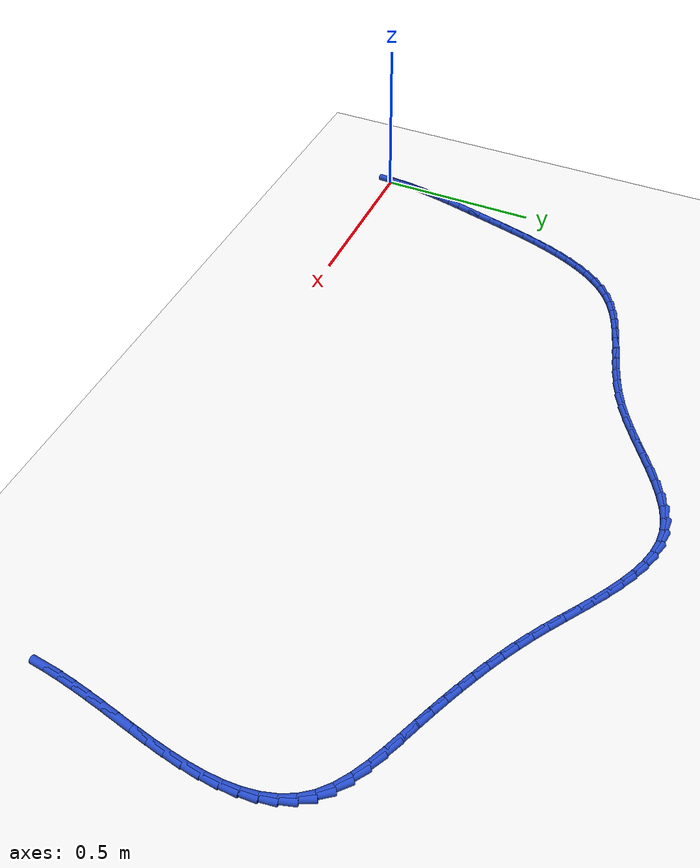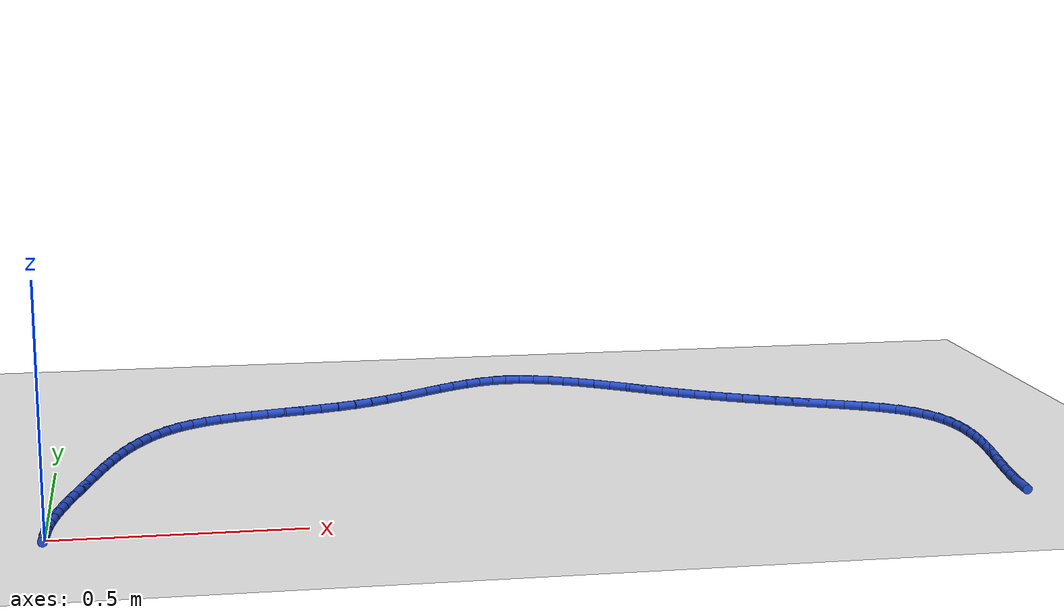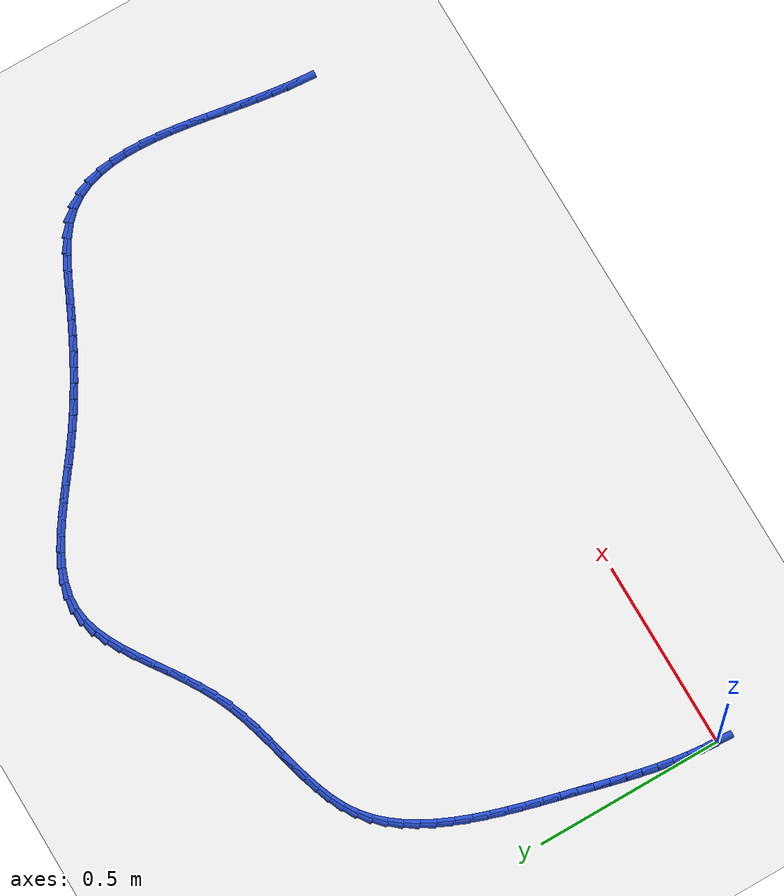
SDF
<sdf version="1.6">
 <world name="default">
  <model name="ground_plane">
   <static>1</static>
   <link name="link">
    <collision name="collision">
     <geometry><plane><normal>0 0 1</normal><size>100 100</size></plane></geometry>
     <surface><friction><ode><mu>100</mu><mu2>50</mu2></ode></friction></surface>
    </collision>
    <visual name="visual">
     <cast_shadows>0</cast_shadows>
     <geometry><plane><normal>0 0 1</normal><size>100 100</size></plane></geometry>
     <material>
      <script><uri>file://media/materials/scripts/gazebo.material</uri><name>Gazebo/WhiteGlow</name></script>
     </material>
    </visual>
   </link>
  </model>
  <model name="line">
   <link name="link_1">
    <pose>0.002293072764880472 0.04026289661467806 0.01 0 1.57 1.4680574297082787</pose>
    <collision name="collision">
     <geometry><cylinder><radius>0.01</radius><length>0.08</length></cylinder></geometry>
    </collision>
    <visual name="visual">
     <material>
      <script><name>Gazebo/Blue</name><uri>file://media/materials/scripts/gazebo.material</uri></script>
     </material>
     <geometry><cylinder><radius>0.01</radius><length>0.08</length></cylinder></geometry>
    </visual>
   </link>
   <link name="link_2">
    <pose>0.0064024168795074445 0.08012000642481716 0.01 0 1.57 1.4277513491622789</pose>
    <collision name="collision">
     <geometry><cylinder><radius>0.01</radius><length>0.08</length></cylinder></geometry>
    </collision>
    <visual name="visual">
     <material>
      <script><name>Gazebo/Blue</name><uri>file://media/materials/scripts/gazebo.material</uri></script>
     </material>
     <geometry><cylinder><radius>0.01</radius><length>0.08</length></cylinder></geometry>
    </visual>
   </link>
   <link name="link_3">
    <pose>0.01210741785367812 0.1197301782009352 0.01 0 1.57 1.393535114544863</pose>
    <collision name="collision">
     <geometry><cylinder><radius>0.01</radius><length>0.08</length></cylinder></geometry>
    </collision>
    <visual name="visual">
     <material>
      <script><name>Gazebo/Blue</name><uri>file://media/materials/scripts/gazebo.material</uri></script>
     </material>
     <geometry><cylinder><radius>0.01</radius><length>0.08</length></cylinder></geometry>
    </visual>
   </link>
   <link name="link_4">
    <pose>0.019187461197189743 0.15925226071355014 0.01 0 1.57 1.3657407606328948</pose>
    <collision name="collision">
     <geometry><cylinder><radius>0.01</radius><length>0.08</length></cylinder></geometry>
    </collision>
    <visual name="visual">
     <material>
      <script><name>Gazebo/Blue</name><uri>file://media/materials/scripts/gazebo.material</uri></script>
     </material>
     <geometry><cylinder><radius>0.01</radius><length>0.08</length></cylinder></geometry>
    </visual>
   </link>
   <link name="link_5">
    <pose>0.027421932419839513 0.19884510273317985 0.01 0 1.57 1.3445104145537299</pose>
    <collision name="collision">
     <geometry><cylinder><radius>0.01</radius><length>0.08</length></cylinder></geometry>
    </collision>
    <visual name="visual">
     <material>
      <script><name>Gazebo/Blue</name><uri>file://media/materials/scripts/gazebo.material</uri></script>
     </material>
     <geometry><cylinder><radius>0.01</radius><length>0.08</length></cylinder></geometry>
    </visual>
   </link>
   <link name="link_6">
    <pose>0.036590217031424656 0.2386675530303423 0.01 0 1.57 1.3298297836015076</pose>
    <collision name="collision">
     <geometry><cylinder><radius>0.01</radius><length>0.08</length></cylinder></geometry>
    </collision>
    <visual name="visual">
     <material>
      <script><name>Gazebo/Blue</name><uri>file://media/materials/scripts/gazebo.material</uri></script>
     </material>
     <geometry><cylinder><radius>0.01</radius><length>0.08</length></cylinder></geometry>
    </visual>
   </link>
   <link name="link_7">
    <pose>0.046471700541742406 0.2788784603755554 0.01 0 1.57 1.3215614664386257</pose>
    <collision name="collision">
     <geometry><cylinder><radius>0.01</radius><length>0.08</length></cylinder></geometry>
    </collision>
    <visual name="visual">
     <material>
      <script><name>Gazebo/Blue</name><uri>file://media/materials/scripts/gazebo.material</uri></script>
     </material>
     <geometry><cylinder><radius>0.01</radius><length>0.08</length></cylinder></geometry>
    </visual>
   </link>
   <link name="link_8">
    <pose>0.056845768460589974 0.3196366735393372 0.01 0 1.57 1.3194734919295483</pose>
    <collision name="collision">
     <geometry><cylinder><radius>0.01</radius><length>0.08</length></cylinder></geometry>
    </collision>
    <visual name="visual">
     <material>
      <script><name>Gazebo/Blue</name><uri>file://media/materials/scripts/gazebo.material</uri></script>
     </material>
     <geometry><cylinder><radius>0.01</radius><length>0.08</length></cylinder></geometry>
    </visual>
   </link>
   <link name="link_9">
    <pose>0.06749180629776459 0.36110104129220555 0.01 0 1.57 1.3211781342932702</pose>
    <collision name="collision">
     <geometry><cylinder><radius>0.01</radius><length>0.08</length></cylinder></geometry>
    </collision>
    <visual name="visual">
     <material>
      <script><name>Gazebo/Blue</name><uri>file://media/materials/scripts/gazebo.material</uri></script>
     </material>
     <geometry><cylinder><radius>0.01</radius><length>0.08</length></cylinder></geometry>
    </visual>
   </link>
   <link name="link_10">
    <pose>0.07826108646905851 0.40334423740519904 0.01 0 1.57 1.3181785002489284</pose>
    <collision name="collision">
     <geometry><cylinder><radius>0.01</radius><length>0.08</length></cylinder></geometry>
    </collision>
    <visual name="visual">
     <material>
      <script><name>Gazebo/Blue</name><uri>file://media/materials/scripts/gazebo.material</uri></script>
     </material>
     <geometry><cylinder><radius>0.01</radius><length>0.08</length></cylinder></geometry>
    </visual>
   </link>
   <link name="link_11">
    <pose>0.08929534082853424 0.44609074509093277 0.01 0 1.57 1.3084979038089992</pose>
    <collision name="collision">
     <geometry><cylinder><radius>0.01</radius><length>0.08</length></cylinder></geometry>
    </collision>
    <visual name="visual">
     <material>
      <script><name>Gazebo/Blue</name><uri>file://media/materials/scripts/gazebo.material</uri></script>
     </material>
     <geometry><cylinder><radius>0.01</radius><length>0.08</length></cylinder></geometry>
    </visual>
   </link>
   <link name="link_12">
    <pose>0.10080965139975946 0.48897711846378944 0.01 0 1.57 1.2920615907499067</pose>
    <collision name="collision">
     <geometry><cylinder><radius>0.01</radius><length>0.08</length></cylinder></geometry>
    </collision>
    <visual name="visual">
     <material>
      <script><name>Gazebo/Blue</name><uri>file://media/materials/scripts/gazebo.material</uri></script>
     </material>
     <geometry><cylinder><radius>0.01</radius><length>0.08</length></cylinder></geometry>
    </visual>
   </link>
   <link name="link_13">
    <pose>0.11301910020905238 0.5316399116348535 0.01 0 1.57 1.268539671049987</pose>
    <collision name="collision">
     <geometry><cylinder><radius>0.01</radius><length>0.08</length></cylinder></geometry>
    </collision>
    <visual name="visual">
     <material>
      <script><name>Gazebo/Blue</name><uri>file://media/materials/scripts/gazebo.material</uri></script>
     </material>
     <geometry><cylinder><radius>0.01</radius><length>0.08</length></cylinder></geometry>
    </visual>
   </link>
   <link name="link_14">
    <pose>0.12613876928273138 0.57371567871521 0.01 0 1.57 1.2373502660613087</pose>
    <collision name="collision">
     <geometry><cylinder><radius>0.01</radius><length>0.08</length></cylinder></geometry>
    </collision>
    <visual name="visual">
     <material>
      <script><name>Gazebo/Blue</name><uri>file://media/materials/scripts/gazebo.material</uri></script>
     </material>
     <geometry><cylinder><radius>0.01</radius><length>0.08</length></cylinder></geometry>
    </visual>
   </link>
   <link name="link_15">
    <pose>0.14038374064711473 0.6148409738159435 0.01 0 1.57 1.197656335810332</pose>
    <collision name="collision">
     <geometry><cylinder><radius>0.01</radius><length>0.08</length></cylinder></geometry>
    </collision>
    <visual name="visual">
     <material>
      <script><name>Gazebo/Blue</name><uri>file://media/materials/scripts/gazebo.material</uri></script>
     </material>
     <geometry><cylinder><radius>0.01</radius><length>0.08</length></cylinder></geometry>
    </visual>
   </link>
   <link name="link_16">
    <pose>0.15596909632852082 0.6546523510481392 0.01 0 1.57 1.1483673766644</pose>
    <collision name="collision">
     <geometry><cylinder><radius>0.01</radius><length>0.08</length></cylinder></geometry>
    </collision>
    <visual name="visual">
     <material>
      <script><name>Gazebo/Blue</name><uri>file://media/materials/scripts/gazebo.material</uri></script>
     </material>
     <geometry><cylinder><radius>0.01</radius><length>0.08</length></cylinder></geometry>
    </visual>
   </link>
   <link name="link_17">
    <pose>0.17310991835326794 0.6927863645228813 0.01 0 1.57 1.088165497358519</pose>
    <collision name="collision">
     <geometry><cylinder><radius>0.01</radius><length>0.08</length></cylinder></geometry>
    </collision>
    <visual name="visual">
     <material>
      <script><name>Gazebo/Blue</name><uri>file://media/materials/scripts/gazebo.material</uri></script>
     </material>
     <geometry><cylinder><radius>0.01</radius><length>0.08</length></cylinder></geometry>
    </visual>
   </link>
   <link name="link_18">
    <pose>0.19202128874767438 0.728879568351255 0.01 0 1.57 1.0155893693187203</pose>
    <collision name="collision">
     <geometry><cylinder><radius>0.01</radius><length>0.08</length></cylinder></geometry>
    </collision>
    <visual name="visual">
     <material>
      <script><name>Gazebo/Blue</name><uri>file://media/materials/scripts/gazebo.material</uri></script>
     </material>
     <geometry><cylinder><radius>0.01</radius><length>0.08</length></cylinder></geometry>
    </visual>
   </link>
   <link name="link_19">
    <pose>0.21291828953805852 0.7625685166443454 0.01 0 1.57 0.9292274954956832</pose>
    <collision name="collision">
     <geometry><cylinder><radius>0.01</radius><length>0.08</length></cylinder></geometry>
    </collision>
    <visual name="visual">
     <material>
      <script><name>Gazebo/Blue</name><uri>file://media/materials/scripts/gazebo.material</uri></script>
     </material>
     <geometry><cylinder><radius>0.01</radius><length>0.08</length></cylinder></geometry>
    </visual>
   </link>
   <link name="link_20">
    <pose>0.2360160027507386 0.7934897635132365 0.01 0 1.57 0.8280821252420515</pose>
    <collision name="collision">
     <geometry><cylinder><radius>0.01</radius><length>0.08</length></cylinder></geometry>
    </collision>
    <visual name="visual">
     <material>
      <script><name>Gazebo/Blue</name><uri>file://media/materials/scripts/gazebo.material</uri></script>
     </material>
     <geometry><cylinder><radius>0.01</radius><length>0.08</length></cylinder></geometry>
    </visual>
   </link>
   <link name="link_21">
    <pose>0.2615295104120331 0.8212798630690138 0.01 0 1.57 0.7121335410974271</pose>
    <collision name="collision">
     <geometry><cylinder><radius>0.01</radius><length>0.08</length></cylinder></geometry>
    </collision>
    <visual name="visual">
     <material>
      <script><name>Gazebo/Blue</name><uri>file://media/materials/scripts/gazebo.material</uri></script>
     </material>
     <geometry><cylinder><radius>0.01</radius><length>0.08</length></cylinder></geometry>
    </visual>
   </link>
   <link name="link_22">
    <pose>0.28967389454826 0.8455753694227616 0.01 0 1.57 0.5850457423293777</pose>
    <collision name="collision">
     <geometry><cylinder><radius>0.01</radius><length>0.08</length></cylinder></geometry>
    </collision>
    <visual name="visual">
     <material>
      <script><name>Gazebo/Blue</name><uri>file://media/materials/scripts/gazebo.material</uri></script>
     </material>
     <geometry><cylinder><radius>0.01</radius><length>0.08</length></cylinder></geometry>
    </visual>
   </link>
   <link name="link_23">
    <pose>0.3206270795238589 0.8660788840515742 0.01 0 1.57 0.46988482494122213</pose>
    <collision name="collision">
     <geometry><cylinder><radius>0.01</radius><length>0.08</length></cylinder></geometry>
    </collision>
    <visual name="visual">
     <material>
      <script><name>Gazebo/Blue</name><uri>file://media/materials/scripts/gazebo.material</uri></script>
     </material>
     <geometry><cylinder><radius>0.01</radius><length>0.08</length></cylinder></geometry>
    </visual>
   </link>
   <link name="link_24">
    <pose>0.35420761839157633 0.8831317872834248 0.01 0 1.57 0.37982766613788504</pose>
    <collision name="collision">
     <geometry><cylinder><radius>0.01</radius><length>0.08</length></cylinder></geometry>
    </collision>
    <visual name="visual">
     <material>
      <script><name>Gazebo/Blue</name><uri>file://media/materials/scripts/gazebo.material</uri></script>
     </material>
     <geometry><cylinder><radius>0.01</radius><length>0.08</length></cylinder></geometry>
    </visual>
   </link>
   <link name="link_25">
    <pose>0.39003258971823157 0.8974335782955515 0.01 0 1.57 0.3143938097577289</pose>
    <collision name="collision">
     <geometry><cylinder><radius>0.01</radius><length>0.08</length></cylinder></geometry>
    </collision>
    <visual name="visual">
     <material>
      <script><name>Gazebo/Blue</name><uri>file://media/materials/scripts/gazebo.material</uri></script>
     </material>
     <geometry><cylinder><radius>0.01</radius><length>0.08</length></cylinder></geometry>
    </visual>
   </link>
   <link name="link_26">
    <pose>0.4277168484675547 0.909687708697065 0.01 0 1.57 0.2717192743123202</pose>
    <collision name="collision">
     <geometry><cylinder><radius>0.01</radius><length>0.08</length></cylinder></geometry>
    </collision>
    <visual name="visual">
     <material>
      <script><name>Gazebo/Blue</name><uri>file://media/materials/scripts/gazebo.material</uri></script>
     </material>
     <geometry><cylinder><radius>0.01</radius><length>0.08</length></cylinder></geometry>
    </visual>
   </link>
   <link name="link_27">
    <pose>0.46687524960327537 0.9205976300970748 0.01 0 1.57 0.24982075747369306</pose>
    <collision name="collision">
     <geometry><cylinder><radius>0.01</radius><length>0.08</length></cylinder></geometry>
    </collision>
    <visual name="visual">
     <material>
      <script><name>Gazebo/Blue</name><uri>file://media/materials/scripts/gazebo.material</uri></script>
     </material>
     <geometry><cylinder><radius>0.01</radius><length>0.08</length></cylinder></geometry>
    </visual>
   </link>
   <link name="link_28">
    <pose>0.5071226480891243 0.9308667941046921 0.01 0 1.57 0.24713892666540466</pose>
    <collision name="collision">
     <geometry><cylinder><radius>0.01</radius><length>0.08</length></cylinder></geometry>
    </collision>
    <visual name="visual">
     <material>
      <script><name>Gazebo/Blue</name><uri>file://media/materials/scripts/gazebo.material</uri></script>
     </material>
     <geometry><cylinder><radius>0.01</radius><length>0.08</length></cylinder></geometry>
    </visual>
   </link>
   <link name="link_29">
    <pose>0.5480738988888312 0.9411986523290262 0.01 0 1.57 0.2626978691096048</pose>
    <collision name="collision">
     <geometry><cylinder><radius>0.01</radius><length>0.08</length></cylinder></geometry>
    </collision>
    <visual name="visual">
     <material>
      <script><name>Gazebo/Blue</name><uri>file://media/materials/scripts/gazebo.material</uri></script>
     </material>
     <geometry><cylinder><radius>0.01</radius><length>0.08</length></cylinder></geometry>
    </visual>
   </link>
   <link name="link_30">
    <pose>0.5893438569661262 0.9522966563791879 0.01 0 1.57 0.2960493335537899</pose>
    <collision name="collision">
     <geometry><cylinder><radius>0.01</radius><length>0.08</length></cylinder></geometry>
    </collision>
    <visual name="visual">
     <material>
      <script><name>Gazebo/Blue</name><uri>file://media/materials/scripts/gazebo.material</uri></script>
     </material>
     <geometry><cylinder><radius>0.01</radius><length>0.08</length></cylinder></geometry>
    </visual>
   </link>
   <link name="link_31">
    <pose>0.6305473772847394 0.9648642578642875 0.01 0 1.57 0.34707436338887726</pose>
    <collision name="collision">
     <geometry><cylinder><radius>0.01</radius><length>0.08</length></cylinder></geometry>
    </collision>
    <visual name="visual">
     <material>
      <script><name>Gazebo/Blue</name><uri>file://media/materials/scripts/gazebo.material</uri></script>
     </material>
     <geometry><cylinder><radius>0.01</radius><length>0.08</length></cylinder></geometry>
    </visual>
   </link>
   <link name="link_32">
    <pose>0.6712993148084009 0.9796049083934346 0.01 0 1.57 0.41561308090729066</pose>
    <collision name="collision">
     <geometry><cylinder><radius>0.01</radius><length>0.08</length></cylinder></geometry>
    </collision>
    <visual name="visual">
     <material>
      <script><name>Gazebo/Blue</name><uri>file://media/materials/scripts/gazebo.material</uri></script>
     </material>
     <geometry><cylinder><radius>0.01</radius><length>0.08</length></cylinder></geometry>
    </visual>
   </link>
   <link name="link_33">
    <pose>0.711214998484006 0.9972205382831679 0.01 0 1.57 0.490434120031888</pose>
    <collision name="collision">
     <geometry><cylinder><radius>0.01</radius><length>0.08</length></cylinder></geometry>
    </collision>
    <visual name="visual">
     <material>
      <script><name>Gazebo/Blue</name><uri>file://media/materials/scripts/gazebo.material</uri></script>
     </material>
     <geometry><cylinder><radius>0.01</radius><length>0.08</length></cylinder></geometry>
    </visual>
   </link>
   <link name="link_34">
    <pose>0.7500517704067763 1.0179572735863964 0.01 0 1.57 0.5462048074378624</pose>
    <collision name="collision">
     <geometry><cylinder><radius>0.01</radius><length>0.08</length></cylinder></geometry>
    </collision>
    <visual name="visual">
     <material>
      <script><name>Gazebo/Blue</name><uri>file://media/materials/scripts/gazebo.material</uri></script>
     </material>
     <geometry><cylinder><radius>0.01</radius><length>0.08</length></cylinder></geometry>
    </visual>
   </link>
   <link name="link_35">
    <pose>0.7879071554901473 1.0409693923068581 0.01 0 1.57 0.5804995807917855</pose>
    <collision name="collision">
     <geometry><cylinder><radius>0.01</radius><length>0.08</length></cylinder></geometry>
    </collision>
    <visual name="visual">
     <material>
      <script><name>Gazebo/Blue</name><uri>file://media/materials/scripts/gazebo.material</uri></script>
     </material>
     <geometry><cylinder><radius>0.01</radius><length>0.08</length></cylinder></geometry>
    </visual>
   </link>
   <link name="link_36">
    <pose>0.8249285554393954 1.065251088296617 0.01 0 1.57 0.5941176223363843</pose>
    <collision name="collision">
     <geometry><cylinder><radius>0.01</radius><length>0.08</length></cylinder></geometry>
    </collision>
    <visual name="visual">
     <material>
      <script><name>Gazebo/Blue</name><uri>file://media/materials/scripts/gazebo.material</uri></script>
     </material>
     <geometry><cylinder><radius>0.01</radius><length>0.08</length></cylinder></geometry>
    </visual>
   </link>
   <link name="link_37">
    <pose>0.8612633719597962 1.0897965554077376 0.01 0 1.57 0.5868349872010306</pose>
    <collision name="collision">
     <geometry><cylinder><radius>0.01</radius><length>0.08</length></cylinder></geometry>
    </collision>
    <visual name="visual">
     <material>
      <script><name>Gazebo/Blue</name><uri>file://media/materials/scripts/gazebo.material</uri></script>
     </material>
     <geometry><cylinder><radius>0.01</radius><length>0.08</length></cylinder></geometry>
    </visual>
   </link>
   <link name="link_38">
    <pose>0.8970590067566245 1.113599987492282 0.01 0 1.57 0.5571392559632566</pose>
    <collision name="collision">
     <geometry><cylinder><radius>0.01</radius><length>0.08</length></cylinder></geometry>
    </collision>
    <visual name="visual">
     <material>
      <script><name>Gazebo/Blue</name><uri>file://media/materials/scripts/gazebo.material</uri></script>
     </material>
     <geometry><cylinder><radius>0.01</radius><length>0.08</length></cylinder></geometry>
    </visual>
   </link>
   <link name="link_39">
    <pose>0.9324628615351568 1.135655578402315 0.01 0 1.57 0.5020618229438581</pose>
    <collision name="collision">
     <geometry><cylinder><radius>0.01</radius><length>0.08</length></cylinder></geometry>
    </collision>
    <visual name="visual">
     <material>
      <script><name>Gazebo/Blue</name><uri>file://media/materials/scripts/gazebo.material</uri></script>
     </material>
     <geometry><cylinder><radius>0.01</radius><length>0.08</length></cylinder></geometry>
    </visual>
   </link>
   <link name="link_40">
    <pose>0.967622338000668 1.1549575219898995 0.01 0 1.57 0.4172511850922168</pose>
    <collision name="collision">
     <geometry><cylinder><radius>0.01</radius><length>0.08</length></cylinder></geometry>
    </collision>
    <visual name="visual">
     <material>
      <script><name>Gazebo/Blue</name><uri>file://media/materials/scripts/gazebo.material</uri></script>
     </material>
     <geometry><cylinder><radius>0.01</radius><length>0.08</length></cylinder></geometry>
    </visual>
   </link>
   <link name="link_41">
    <pose>1.0026848378584337 1.1705000121070996 0.01 0 1.57 0.29780293614020903</pose>
    <collision name="collision">
     <geometry><cylinder><radius>0.01</radius><length>0.08</length></cylinder></geometry>
    </collision>
    <visual name="visual">
     <material>
      <script><name>Gazebo/Blue</name><uri>file://media/materials/scripts/gazebo.material</uri></script>
     </material>
     <geometry><cylinder><radius>0.01</radius><length>0.08</length></cylinder></geometry>
    </visual>
   </link>
   <link name="link_42">
    <pose>1.03779776281373 1.1812772426059786 0.01 0 1.57 0.1408359196409366</pose>
    <collision name="collision">
     <geometry><cylinder><radius>0.01</radius><length>0.08</length></cylinder></geometry>
    </collision>
    <visual name="visual">
     <material>
      <script><name>Gazebo/Blue</name><uri>file://media/materials/scripts/gazebo.material</uri></script>
     </material>
     <geometry><cylinder><radius>0.01</radius><length>0.08</length></cylinder></geometry>
    </visual>
   </link>
   <link name="link_43">
    <pose>1.0731085145718318 1.1862834073386006 0.01 0 1.57 -0.04283869534635073</pose>
    <collision name="collision">
     <geometry><cylinder><radius>0.01</radius><length>0.08</length></cylinder></geometry>
    </collision>
    <visual name="visual">
     <material>
      <script><name>Gazebo/Blue</name><uri>file://media/materials/scripts/gazebo.material</uri></script>
     </material>
     <geometry><cylinder><radius>0.01</radius><length>0.08</length></cylinder></geometry>
    </visual>
   </link>
   <link name="link_44">
    <pose>1.1087351744574678 1.1847562734200272 0.01 0 1.57 -0.20867135849247911</pose>
    <collision name="collision">
     <geometry><cylinder><radius>0.01</radius><length>0.08</length></cylinder></geometry>
    </collision>
    <visual name="visual">
     <material>
      <script><name>Gazebo/Blue</name><uri>file://media/materials/scripts/gazebo.material</uri></script>
     </material>
     <geometry><cylinder><radius>0.01</radius><length>0.08</length></cylinder></geometry>
    </visual>
   </link>
   <link name="link_45">
    <pose>1.1446492389579903 1.1771513325132588 0.01 0 1.57 -0.3416705830866303</pose>
    <collision name="collision">
     <geometry><cylinder><radius>0.01</radius><length>0.08</length></cylinder></geometry>
    </collision>
    <visual name="visual">
     <material>
      <script><name>Gazebo/Blue</name><uri>file://media/materials/scripts/gazebo.material</uri></script>
     </material>
     <geometry><cylinder><radius>0.01</radius><length>0.08</length></cylinder></geometry>
    </visual>
   </link>
   <link name="link_46">
    <pose>1.1807764894034296 1.1643038459101005 0.01 0 1.57 -0.4440825799264657</pose>
    <collision name="collision">
     <geometry><cylinder><radius>0.01</radius><length>0.08</length></cylinder></geometry>
    </collision>
    <visual name="visual">
     <material>
      <script><name>Gazebo/Blue</name><uri>file://media/materials/scripts/gazebo.material</uri></script>
     </material>
     <geometry><cylinder><radius>0.01</radius><length>0.08</length></cylinder></geometry>
    </visual>
   </link>
   <link name="link_47">
    <pose>1.2170426920898276 1.1470491997942642 0.01 0 1.57 -0.5205122893193966</pose>
    <collision name="collision">
     <geometry><cylinder><radius>0.01</radius><length>0.08</length></cylinder></geometry>
    </collision>
    <visual name="visual">
     <material>
      <script><name>Gazebo/Blue</name><uri>file://media/materials/scripts/gazebo.material</uri></script>
     </material>
     <geometry><cylinder><radius>0.01</radius><length>0.08</length></cylinder></geometry>
    </visual>
   </link>
   <link name="link_48">
    <pose>1.2533736133132252 1.126222780349462 0.01 0 1.57 -0.5754823118493644</pose>
    <collision name="collision">
     <geometry><cylinder><radius>0.01</radius><length>0.08</length></cylinder></geometry>
    </collision>
    <visual name="visual">
     <material>
      <script><name>Gazebo/Blue</name><uri>file://media/materials/scripts/gazebo.material</uri></script>
     </material>
     <geometry><cylinder><radius>0.01</radius><length>0.08</length></cylinder></geometry>
    </visual>
   </link>
   <link name="link_49">
    <pose>1.2896950193696632 1.1026599737594047 0.01 0 1.57 -0.6125284658679858</pose>
    <collision name="collision">
     <geometry><cylinder><radius>0.01</radius><length>0.08</length></cylinder></geometry>
    </collision>
    <visual name="visual">
     <material>
      <script><name>Gazebo/Blue</name><uri>file://media/materials/scripts/gazebo.material</uri></script>
     </material>
     <geometry><cylinder><radius>0.01</radius><length>0.08</length></cylinder></geometry>
    </visual>
   </link>
   <link name="link_50">
    <pose>1.3259326765551833 1.0771961662078033 0.01 0 1.57 -0.6340272139407414</pose>
    <collision name="collision">
     <geometry><cylinder><radius>0.01</radius><length>0.08</length></cylinder></geometry>
    </collision>
    <visual name="visual">
     <material>
      <script><name>Gazebo/Blue</name><uri>file://media/materials/scripts/gazebo.material</uri></script>
     </material>
     <geometry><cylinder><radius>0.01</radius><length>0.08</length></cylinder></geometry>
    </visual>
   </link>
   <link name="link_51">
    <pose>1.362012351165826 1.0506667438783697 0.01 0 1.57 -0.6412488032385681</pose>
    <collision name="collision">
     <geometry><cylinder><radius>0.01</radius><length>0.08</length></cylinder></geometry>
    </collision>
    <visual name="visual">
     <material>
      <script><name>Gazebo/Blue</name><uri>file://media/materials/scripts/gazebo.material</uri></script>
     </material>
     <geometry><cylinder><radius>0.01</radius><length>0.08</length></cylinder></geometry>
    </visual>
   </link>
   <link name="link_52">
    <pose>1.3978598094976329 1.023907092954815 0.01 0 1.57 -0.6344134094242865</pose>
    <collision name="collision">
     <geometry><cylinder><radius>0.01</radius><length>0.08</length></cylinder></geometry>
    </collision>
    <visual name="visual">
     <material>
      <script><name>Gazebo/Blue</name><uri>file://media/materials/scripts/gazebo.material</uri></script>
     </material>
     <geometry><cylinder><radius>0.01</radius><length>0.08</length></cylinder></geometry>
    </visual>
   </link>
   <link name="link_53">
    <pose>1.4334008178466449 0.9977525996208514 0.01 0 1.57 -0.6134081438822657</pose>
    <collision name="collision">
     <geometry><cylinder><radius>0.01</radius><length>0.08</length></cylinder></geometry>
    </collision>
    <visual name="visual">
     <material>
      <script><name>Gazebo/Blue</name><uri>file://media/materials/scripts/gazebo.material</uri></script>
     </material>
     <geometry><cylinder><radius>0.01</radius><length>0.08</length></cylinder></geometry>
    </visual>
   </link>
   <link name="link_54">
    <pose>1.4685715213510977 0.9729922845638402 0.01 0 1.57 -0.5864075788525958</pose>
    <collision name="collision">
     <geometry><cylinder><radius>0.01</radius><length>0.08</length></cylinder></geometry>
    </collision>
    <visual name="visual">
     <material>
      <script><name>Gazebo/Blue</name><uri>file://media/materials/scripts/gazebo.material</uri></script>
     </material>
     <geometry><cylinder><radius>0.01</radius><length>0.08</length></cylinder></geometry>
    </visual>
   </link>
   <link name="link_55">
    <pose>1.503439709040889 0.9498270745138628 0.01 0 1.57 -0.5600649396568915</pose>
    <collision name="collision">
     <geometry><cylinder><radius>0.01</radius><length>0.08</length></cylinder></geometry>
    </collision>
    <visual name="visual">
     <material>
      <script><name>Gazebo/Blue</name><uri>file://media/materials/scripts/gazebo.material</uri></script>
     </material>
     <geometry><cylinder><radius>0.01</radius><length>0.08</length></cylinder></geometry>
    </visual>
   </link>
   <link name="link_56">
    <pose>1.5381636290099951 0.9280537875994134 0.01 0 1.57 -0.5350830426676773</pose>
    <collision name="collision">
     <geometry><cylinder><radius>0.01</radius><length>0.08</length></cylinder></geometry>
    </collision>
    <visual name="visual">
     <material>
      <script><name>Gazebo/Blue</name><uri>file://media/materials/scripts/gazebo.material</uri></script>
     </material>
     <geometry><cylinder><radius>0.01</radius><length>0.08</length></cylinder></geometry>
    </visual>
   </link>
   <link name="link_57">
    <pose>1.5729033059908895 0.9074613051556425 0.01 0 1.57 -0.5120162792564805</pose>
    <collision name="collision">
     <geometry><cylinder><radius>0.01</radius><length>0.08</length></cylinder></geometry>
    </collision>
    <visual name="visual">
     <material>
      <script><name>Gazebo/Blue</name><uri>file://media/materials/scripts/gazebo.material</uri></script>
     </material>
     <geometry><cylinder><radius>0.01</radius><length>0.08</length></cylinder></geometry>
    </visual>
   </link>
   <link name="link_58">
    <pose>1.607818764716044 0.8878385085177005 0.01 0 1.57 -0.49135992198598105</pose>
    <collision name="collision">
     <geometry><cylinder><radius>0.01</radius><length>0.08</length></cylinder></geometry>
    </collision>
    <visual name="visual">
     <material>
      <script><name>Gazebo/Blue</name><uri>file://media/materials/scripts/gazebo.material</uri></script>
     </material>
     <geometry><cylinder><radius>0.01</radius><length>0.08</length></cylinder></geometry>
    </visual>
   </link>
   <link name="link_59">
    <pose>1.64307002991793 0.8689742790207376 0.01 0 1.57 -0.47351763720241713</pose>
    <collision name="collision">
     <geometry><cylinder><radius>0.01</radius><length>0.08</length></cylinder></geometry>
    </collision>
    <visual name="visual">
     <material>
      <script><name>Gazebo/Blue</name><uri>file://media/materials/scripts/gazebo.material</uri></script>
     </material>
     <geometry><cylinder><radius>0.01</radius><length>0.08</length></cylinder></geometry>
    </visual>
   </link>
   <link name="link_60">
    <pose>1.6788171263290208 0.8506574979999052 0.01 0 1.57 -0.4587785244799996</pose>
    <collision name="collision">
     <geometry><cylinder><radius>0.01</radius><length>0.08</length></cylinder></geometry>
    </collision>
    <visual name="visual">
     <material>
      <script><name>Gazebo/Blue</name><uri>file://media/materials/scripts/gazebo.material</uri></script>
     </material>
     <geometry><cylinder><radius>0.01</radius><length>0.08</length></cylinder></geometry>
    </visual>
   </link>
   <link name="link_61">
    <pose>1.7152200786817886 0.8326770467903528 0.01 0 1.57 -0.44730595617629876</pose>
    <collision name="collision">
     <geometry><cylinder><radius>0.01</radius><length>0.08</length></cylinder></geometry>
    </collision>
    <visual name="visual">
     <material>
      <script><name>Gazebo/Blue</name><uri>file://media/materials/scripts/gazebo.material</uri></script>
     </material>
     <geometry><cylinder><radius>0.01</radius><length>0.08</length></cylinder></geometry>
    </visual>
   </link>
   <link name="link_62">
    <pose>1.7524389117087047 0.8148218067272315 0.01 0 1.57 -0.4397778877596279</pose>
    <collision name="collision">
     <geometry><cylinder><radius>0.01</radius><length>0.08</length></cylinder></geometry>
    </collision>
    <visual name="visual">
     <material>
      <script><name>Gazebo/Blue</name><uri>file://media/materials/scripts/gazebo.material</uri></script>
     </material>
     <geometry><cylinder><radius>0.01</radius><length>0.08</length></cylinder></geometry>
    </visual>
   </link>
   <link name="link_63">
    <pose>1.7905946869582159 0.7968691628397468 0.01 0 1.57 -0.4478152844609477</pose>
    <collision name="collision">
     <geometry><cylinder><radius>0.01</radius><length>0.08</length></cylinder></geometry>
    </collision>
    <visual name="visual">
     <material>
      <script><name>Gazebo/Blue</name><uri>file://media/materials/scripts/gazebo.material</uri></script>
     </material>
     <geometry><cylinder><radius>0.01</radius><length>0.08</length></cylinder></geometry>
    </visual>
   </link>
   <link name="link_64">
    <pose>1.8290808573796944 0.7783818151596678 0.01 0 1.57 -0.48193903582845404</pose>
    <collision name="collision">
     <geometry><cylinder><radius>0.01</radius><length>0.08</length></cylinder></geometry>
    </collision>
    <visual name="visual">
     <material>
      <script><name>Gazebo/Blue</name><uri>file://media/materials/scripts/gazebo.material</uri></script>
     </material>
     <geometry><cylinder><radius>0.01</radius><length>0.08</length></cylinder></geometry>
    </visual>
   </link>
   <link name="link_65">
    <pose>1.866646157649573 0.7587322359768823 0.01 0 1.57 -0.5450507842750932</pose>
    <collision name="collision">
     <geometry><cylinder><radius>0.01</radius><length>0.08</length></cylinder></geometry>
    </collision>
    <visual name="visual">
     <material>
      <script><name>Gazebo/Blue</name><uri>file://media/materials/scripts/gazebo.material</uri></script>
     </material>
     <geometry><cylinder><radius>0.01</radius><length>0.08</length></cylinder></geometry>
    </visual>
   </link>
   <link name="link_66">
    <pose>1.9020170133869174 0.7372863151687983 0.01 0 1.57 -0.6424821381866102</pose>
    <collision name="collision">
     <geometry><cylinder><radius>0.01</radius><length>0.08</length></cylinder></geometry>
    </collision>
    <visual name="visual">
     <material>
      <script><name>Gazebo/Blue</name><uri>file://media/materials/scripts/gazebo.material</uri></script>
     </material>
     <geometry><cylinder><radius>0.01</radius><length>0.08</length></cylinder></geometry>
    </visual>
   </link>
   <link name="link_67">
    <pose>1.933919850210792 0.7134099426128232 0.01 0 1.57 -0.781323579169599</pose>
    <collision name="collision">
     <geometry><cylinder><radius>0.01</radius><length>0.08</length></cylinder></geometry>
    </collision>
    <visual name="visual">
     <material>
      <script><name>Gazebo/Blue</name><uri>file://media/materials/scripts/gazebo.material</uri></script>
     </material>
     <geometry><cylinder><radius>0.01</radius><length>0.08</length></cylinder></geometry>
    </visual>
   </link>
   <link name="link_68">
    <pose>1.9610811804362533 0.6864690576400629 0.01 0 1.57 -0.9554181284804882</pose>
    <collision name="collision">
     <geometry><cylinder><radius>0.01</radius><length>0.08</length></cylinder></geometry>
    </collision>
    <visual name="visual">
     <material>
      <script><name>Gazebo/Blue</name><uri>file://media/materials/scripts/gazebo.material</uri></script>
     </material>
     <geometry><cylinder><radius>0.01</radius><length>0.08</length></cylinder></geometry>
    </visual>
   </link>
   <link name="link_69">
    <pose>1.9825940668032185 0.6560386896911992 0.01 0 1.57 -1.1231324074281746</pose>
    <collision name="collision">
     <geometry><cylinder><radius>0.01</radius><length>0.08</length></cylinder></geometry>
    </collision>
    <visual name="visual">
     <material>
      <script><name>Gazebo/Blue</name><uri>file://media/materials/scripts/gazebo.material</uri></script>
     </material>
     <geometry><cylinder><radius>0.01</radius><length>0.08</length></cylinder></geometry>
    </visual>
   </link>
   <link name="link_70">
    <pose>1.9987558151451228 0.6223808004904414 0.01 0 1.57 -1.2690595300823144</pose>
    <collision name="collision">
     <geometry><cylinder><radius>0.01</radius><length>0.08</length></cylinder></geometry>
    </collision>
    <visual name="visual">
     <material>
      <script><name>Gazebo/Blue</name><uri>file://media/materials/scripts/gazebo.material</uri></script>
     </material>
     <geometry><cylinder><radius>0.01</radius><length>0.08</length></cylinder></geometry>
    </visual>
   </link>
   <link name="link_71">
    <pose>2.0101106662156147 0.5858982100069328 0.01 0 1.57 -1.390478721852128</pose>
    <collision name="collision">
     <geometry><cylinder><radius>0.01</radius><length>0.08</length></cylinder></geometry>
    </collision>
    <visual name="visual">
     <material>
      <script><name>Gazebo/Blue</name><uri>file://media/materials/scripts/gazebo.material</uri></script>
     </material>
     <geometry><cylinder><radius>0.01</radius><length>0.08</length></cylinder></geometry>
    </visual>
   </link>
   <link name="link_72">
    <pose>2.017202860768345 0.5469937382098173 0.01 0 1.57 -1.4885412959173654</pose>
    <collision name="collision">
     <geometry><cylinder><radius>0.01</radius><length>0.08</length></cylinder></geometry>
    </collision>
    <visual name="visual">
     <material>
      <script><name>Gazebo/Blue</name><uri>file://media/materials/scripts/gazebo.material</uri></script>
     </material>
     <geometry><cylinder><radius>0.01</radius><length>0.08</length></cylinder></geometry>
    </visual>
   </link>
   <link name="link_73">
    <pose>2.020576639556963 0.5060702050682382 0.01 0 1.57 -1.5661041930075164</pose>
    <collision name="collision">
     <geometry><cylinder><radius>0.01</radius><length>0.08</length></cylinder></geometry>
    </collision>
    <visual name="visual">
     <material>
      <script><name>Gazebo/Blue</name><uri>file://media/materials/scripts/gazebo.material</uri></script>
     </material>
     <geometry><cylinder><radius>0.01</radius><length>0.08</length></cylinder></geometry>
    </visual>
   </link>
   <link name="link_74">
    <pose>2.020776243335117 0.4635304305513381 0.01 0 1.57 1.51530699549678</pose>
    <collision name="collision">
     <geometry><cylinder><radius>0.01</radius><length>0.08</length></cylinder></geometry>
    </collision>
    <visual name="visual">
     <material>
      <script><name>Gazebo/Blue</name><uri>file://media/materials/scripts/gazebo.material</uri></script>
     </material>
     <geometry><cylinder><radius>0.01</radius><length>0.08</length></cylinder></geometry>
    </visual>
   </link>
   <link name="link_75">
    <pose>2.0183459128564576 0.41977723462826144 0.01 0 1.57 1.4698027008228884</pose>
    <collision name="collision">
     <geometry><cylinder><radius>0.01</radius><length>0.08</length></cylinder></geometry>
    </collision>
    <visual name="visual">
     <material>
      <script><name>Gazebo/Blue</name><uri>file://media/materials/scripts/gazebo.material</uri></script>
     </material>
     <geometry><cylinder><radius>0.01</radius><length>0.08</length></cylinder></geometry>
    </visual>
   </link>
   <link name="link_76">
    <pose>2.013829888874634 0.37521343726815104 0.01 0 1.57 1.4369064983368984</pose>
    <collision name="collision">
     <geometry><cylinder><radius>0.01</radius><length>0.08</length></cylinder></geometry>
    </collision>
    <visual name="visual">
     <material>
      <script><name>Gazebo/Blue</name><uri>file://media/materials/scripts/gazebo.material</uri></script>
     </material>
     <geometry><cylinder><radius>0.01</radius><length>0.08</length></cylinder></geometry>
    </visual>
   </link>
   <link name="link_77">
    <pose>2.0077724121432956 0.33024185844015 0.01 0 1.57 1.4152113690932766</pose>
    <collision name="collision">
     <geometry><cylinder><radius>0.01</radius><length>0.08</length></cylinder></geometry>
    </collision>
    <visual name="visual">
     <material>
      <script><name>Gazebo/Blue</name><uri>file://media/materials/scripts/gazebo.material</uri></script>
     </material>
     <geometry><cylinder><radius>0.01</radius><length>0.08</length></cylinder></geometry>
    </visual>
   </link>
   <link name="link_78">
    <pose>2.000717723416092 0.2852653181134027 0.01 0 1.57 1.403948333308814</pose>
    <collision name="collision">
     <geometry><cylinder><radius>0.01</radius><length>0.08</length></cylinder></geometry>
    </collision>
    <visual name="visual">
     <material>
      <script><name>Gazebo/Blue</name><uri>file://media/materials/scripts/gazebo.material</uri></script>
     </material>
     <geometry><cylinder><radius>0.01</radius><length>0.08</length></cylinder></geometry>
    </visual>
   </link>
   <link name="link_79">
    <pose>1.993210063446673 0.24068663625705145 0.01 0 1.57 1.4029805660764292</pose>
    <collision name="collision">
     <geometry><cylinder><radius>0.01</radius><length>0.08</length></cylinder></geometry>
    </collision>
    <visual name="visual">
     <material>
      <script><name>Gazebo/Blue</name><uri>file://media/materials/scripts/gazebo.material</uri></script>
     </material>
     <geometry><cylinder><radius>0.01</radius><length>0.08</length></cylinder></geometry>
    </visual>
   </link>
   <link name="link_80">
    <pose>1.9857936729886876 0.19690863284024063 0.01 0 1.57 1.4121566011729525</pose>
    <collision name="collision">
     <geometry><cylinder><radius>0.01</radius><length>0.08</length></cylinder></geometry>
    </collision>
    <visual name="visual">
     <material>
      <script><name>Gazebo/Blue</name><uri>file://media/materials/scripts/gazebo.material</uri></script>
     </material>
     <geometry><cylinder><radius>0.01</radius><length>0.08</length></cylinder></geometry>
    </visual>
   </link>
   <link name="link_81">
    <pose>1.9789736565380283 0.15427928460389026 0.01 0 1.57 1.42732540284289</pose>
    <collision name="collision">
     <geometry><cylinder><radius>0.01</radius><length>0.08</length></cylinder></geometry>
    </collision>
    <visual name="visual">
     <material>
      <script><name>Gazebo/Blue</name><uri>file://media/materials/scripts/gazebo.material</uri></script>
     </material>
     <geometry><cylinder><radius>0.01</radius><length>0.08</length></cylinder></geometry>
    </visual>
   </link>
   <link name="link_82">
    <pose>1.9729747149742998 0.11275362730775111 0.01 0 1.57 1.4465460691664207</pose>
    <collision name="collision">
     <geometry><cylinder><radius>0.01</radius><length>0.08</length></cylinder></geometry>
    </collision>
    <visual name="visual">
     <material>
      <script><name>Gazebo/Blue</name><uri>file://media/materials/scripts/gazebo.material</uri></script>
     </material>
     <geometry><cylinder><radius>0.01</radius><length>0.08</length></cylinder></geometry>
    </visual>
   </link>
   <link name="link_83">
    <pose>1.9678992482779107 0.072115311492069 0.01 0 1.57 1.4698075770740986</pose>
    <collision name="collision">
     <geometry><cylinder><radius>0.01</radius><length>0.08</length></cylinder></geometry>
    </collision>
    <visual name="visual">
     <material>
      <script><name>Gazebo/Blue</name><uri>file://media/materials/scripts/gazebo.material</uri></script>
     </material>
     <geometry><cylinder><radius>0.01</radius><length>0.08</length></cylinder></geometry>
    </visual>
   </link>
   <link name="link_84">
    <pose>1.9638491483177754 0.032147275659804894 0.01 0 1.57 1.4969625499661707</pose>
    <collision name="collision">
     <geometry><cylinder><radius>0.01</radius><length>0.08</length></cylinder></geometry>
    </collision>
    <visual name="visual">
     <material>
      <script><name>Gazebo/Blue</name><uri>file://media/materials/scripts/gazebo.material</uri></script>
     </material>
     <geometry><cylinder><radius>0.01</radius><length>0.08</length></cylinder></geometry>
    </visual>
   </link>
   <link name="link_170">
    <pose>-1.0408340855860843e-17 3.469446951953614e-17 0.01 0 1.57 1.5127956765888946</pose>
    <collision name="collision">
     <geometry><cylinder><radius>0.01</radius><length>0.08</length></cylinder></geometry>
    </collision>
    <visual name="visual">
     <material>
      <script><name>Gazebo/Blue</name><uri>file://media/materials/scripts/gazebo.material</uri></script>
     </material>
     <geometry><cylinder><radius>0.01</radius><length>0.08</length></cylinder></geometry>
    </visual>
   </link>
   <link name="link_171">
    <pose>0.0023342548604961127 0.04020018273100777 0.01 0 1.57 1.5127956765888948</pose>
    <collision name="collision">
     <geometry><cylinder><radius>0.01</radius><length>0.08</length></cylinder></geometry>
    </collision>
    <visual name="visual">
     <material>
      <script><name>Gazebo/Blue</name><uri>file://media/materials/scripts/gazebo.material</uri></script>
     </material>
     <geometry><cylinder><radius>0.01</radius><length>0.08</length></cylinder></geometry>
    </visual>
   </link>
  </model>
 </world>
</sdf>
